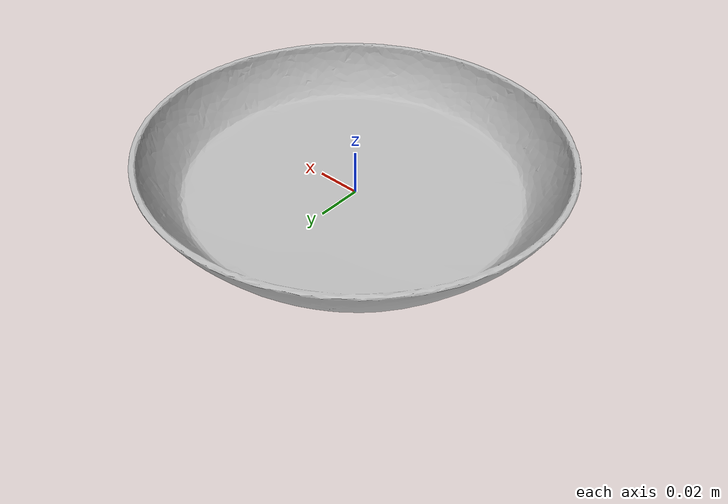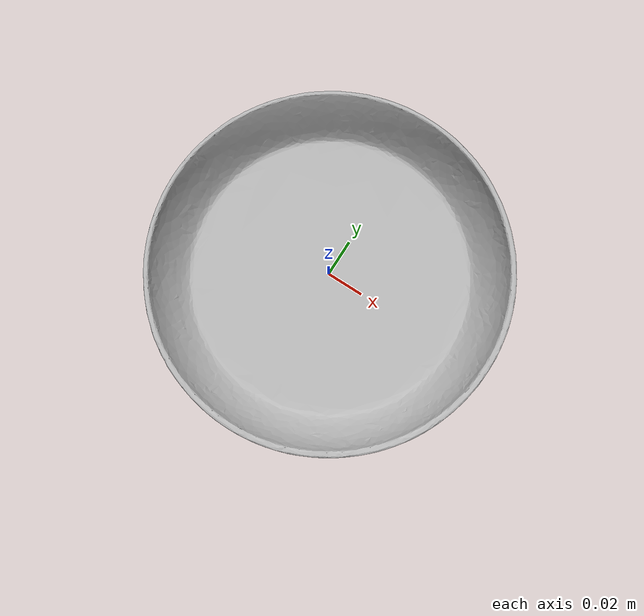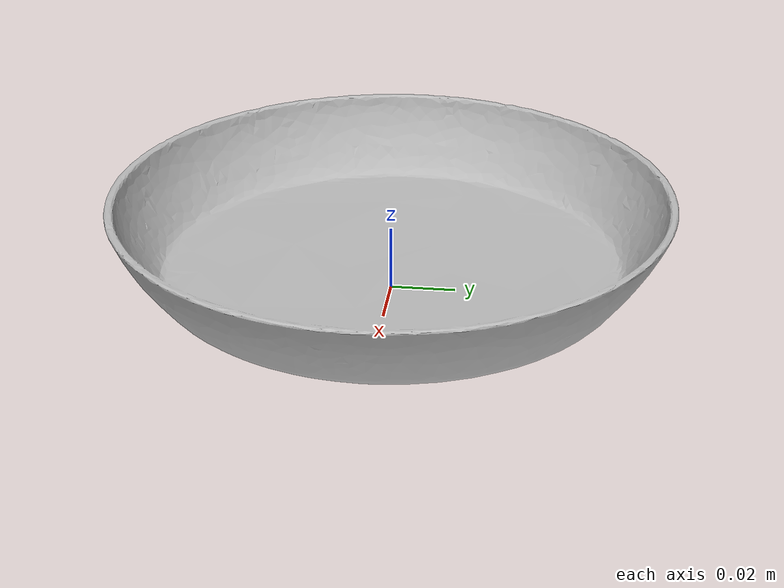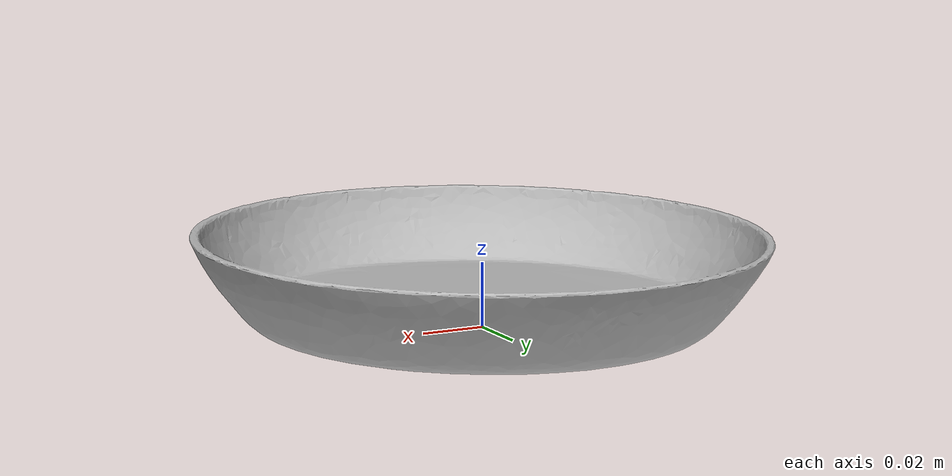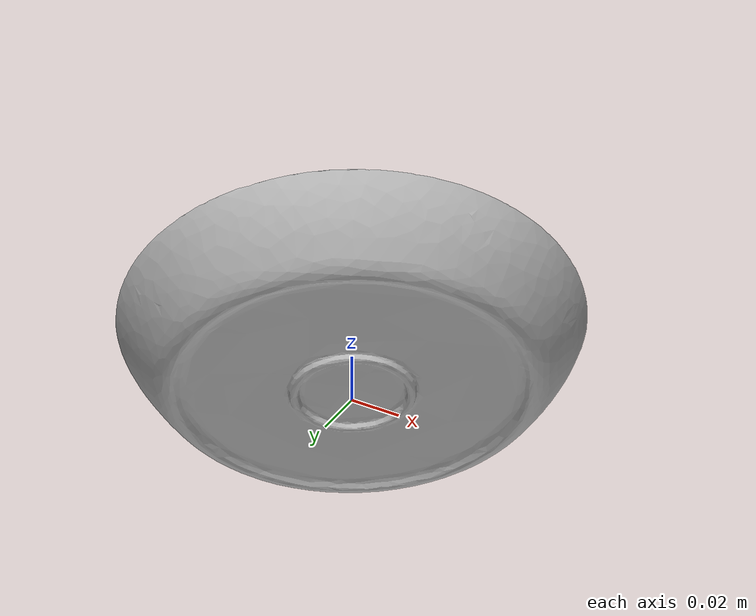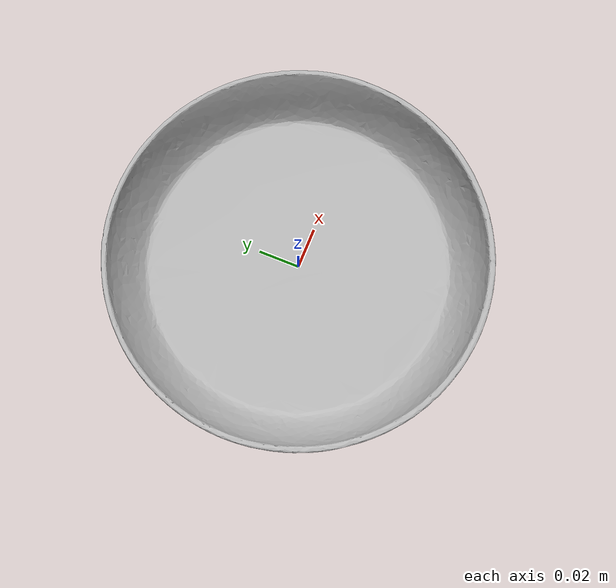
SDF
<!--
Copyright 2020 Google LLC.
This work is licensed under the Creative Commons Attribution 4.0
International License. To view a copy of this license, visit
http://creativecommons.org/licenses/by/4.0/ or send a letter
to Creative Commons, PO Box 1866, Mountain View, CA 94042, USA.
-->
<?xml version="1.0" ?>
<sdf version="1.6">
  <model name="Ecoforms_Plant_Saucer_S17MOCHA">
    <link name="link_0">
      <visual name="visual">
        <geometry>
          <mesh>
            <uri>meshes/model.obj</uri>
          </mesh>
        </geometry>
      </visual>
      <collision name="collision_0">
        <geometry>
          <mesh>
            <uri>meshes/model.obj</uri>
          </mesh>
        </geometry>
      </collision>
    </link>
  </model>
</sdf>
